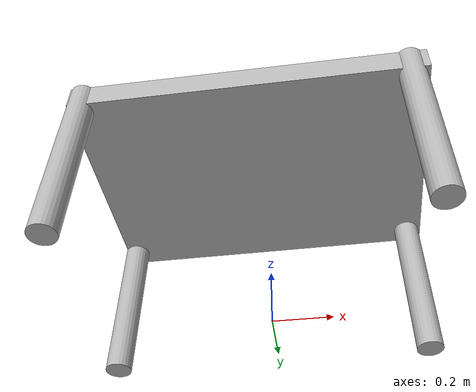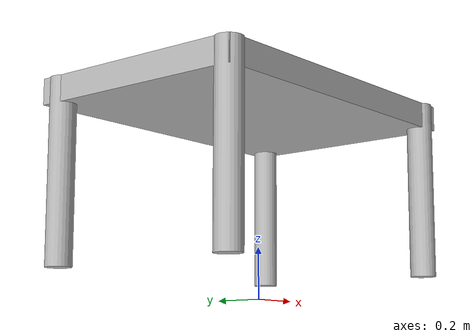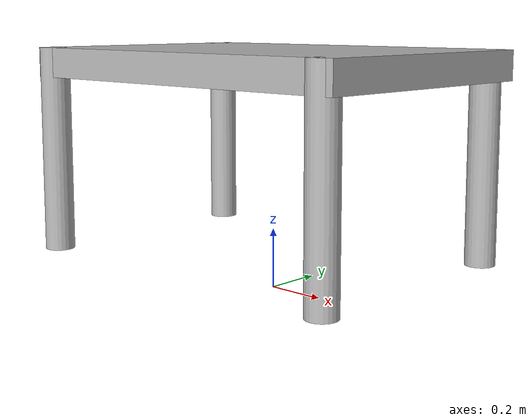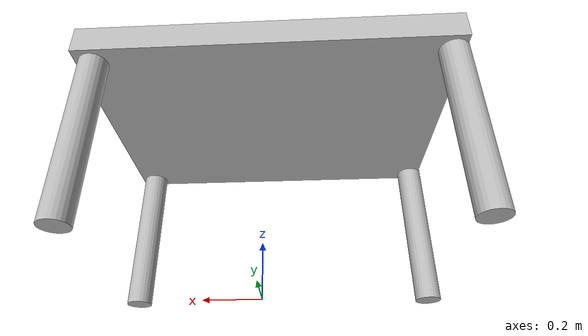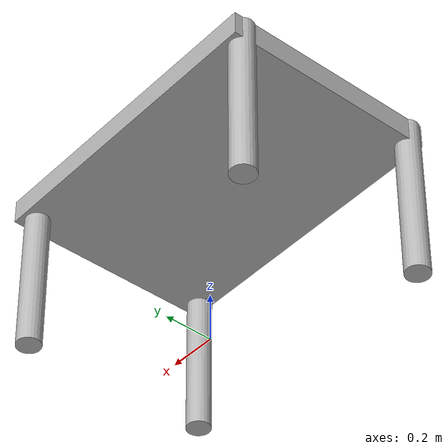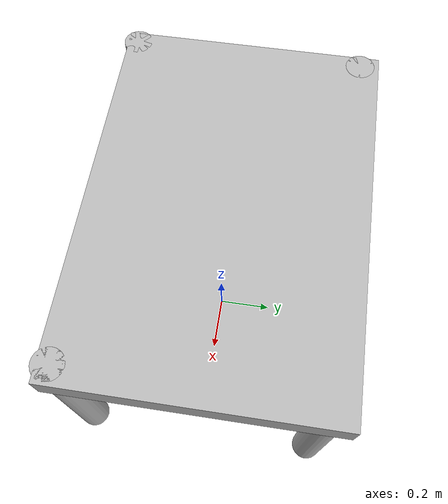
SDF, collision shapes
<?xml version='1.0'?>
<sdf version='1.6'>
  <model name='dinning_room_table'>
    <link name='base_link'>
      <pose frame=''>0 0 0 0 0 0</pose>
      <inertial>
        <pose frame=''>0 0 0 0 0 0</pose>
        <mass>10</mass>
        <inertia>
          <ixx>1</ixx>
          <ixy>0</ixy>
          <ixz>0</ixz>
          <iyy>1</iyy>
          <iyz>0</iyz>
          <izz>1</izz>
        </inertia>
      </inertial>
      <visual name='visual'>
        <pose frame=''>-4.8 -1.2 0 0 -0 0</pose>
        <geometry>
          <mesh>
            <uri>file://isr-testbed/dinning_room_table/dinning_room_table.dae</uri>
            <scale>1 1 1</scale>
          </mesh>
        </geometry>
        <transparency>0</transparency>
      </visual>
      <collision name='base_collision'>
        <laser_retro>0</laser_retro>
        <max_contacts>10</max_contacts>
        <pose frame=''>-0.04 0.015 0.75 0 0 0</pose>
        <geometry>
          <box>
            <size>1.3 0.9 0.1</size>
          </box>
        </geometry>
      </collision>
      <collision name='leg1_collision'>
        <laser_retro>0</laser_retro>
        <max_contacts>10</max_contacts>
        <pose frame=''>-0.65 -0.4 0.45 0 0 0</pose>
        <geometry>
          <cylinder>
            <radius>.05</radius>
            <length>0.7</length>
          </cylinder>
        </geometry>
      </collision>
      <collision name='leg2_collision'>
        <laser_retro>0</laser_retro>
        <max_contacts>10</max_contacts>
        <pose frame=''>0.55 -0.4 0.45 0 0 0</pose>
        <geometry>
          <cylinder>
            <radius>.05</radius>
            <length>0.7</length>
          </cylinder>
        </geometry>
      </collision>
      <collision name='leg3_collision'>
        <laser_retro>0</laser_retro>
        <max_contacts>10</max_contacts>
        <pose frame=''>0.55 0.4 0.45 0 0 0</pose>
        <geometry>
          <cylinder>
            <radius>.05</radius>
            <length>0.7</length>
          </cylinder>
        </geometry>
      </collision>
      <collision name='leg4_collision'>
        <laser_retro>0</laser_retro>
        <max_contacts>10</max_contacts>
        <pose frame=''>-0.65 0.4 0.45 0 0 0</pose>
        <geometry>
          <cylinder>
            <radius>.05</radius>
            <length>0.7</length>
          </cylinder>
        </geometry>
      </collision>
    </link>
    <static>0</static>
  </model>
</sdf>
